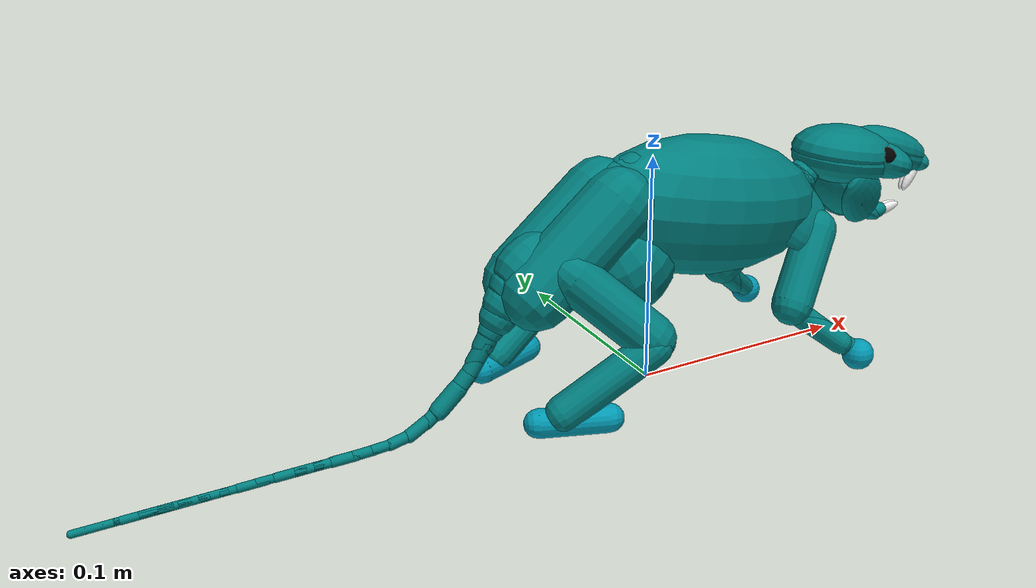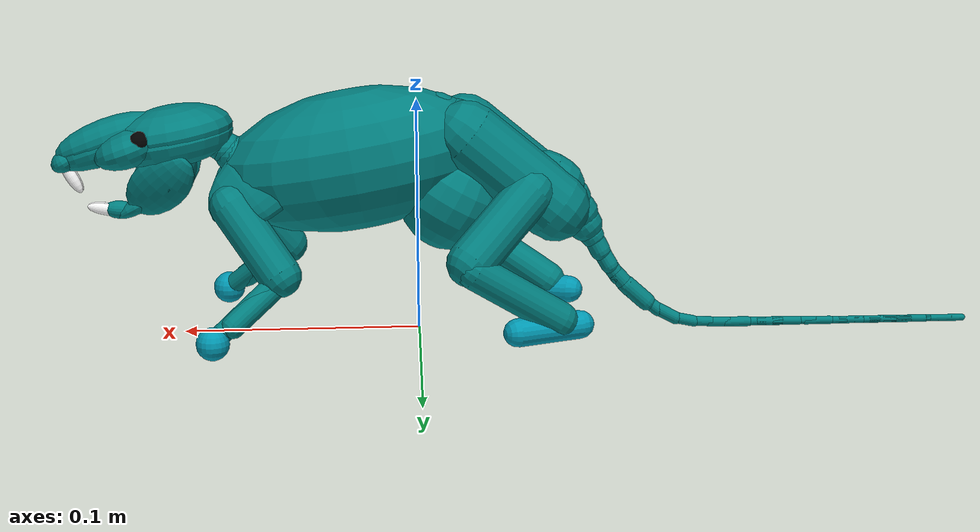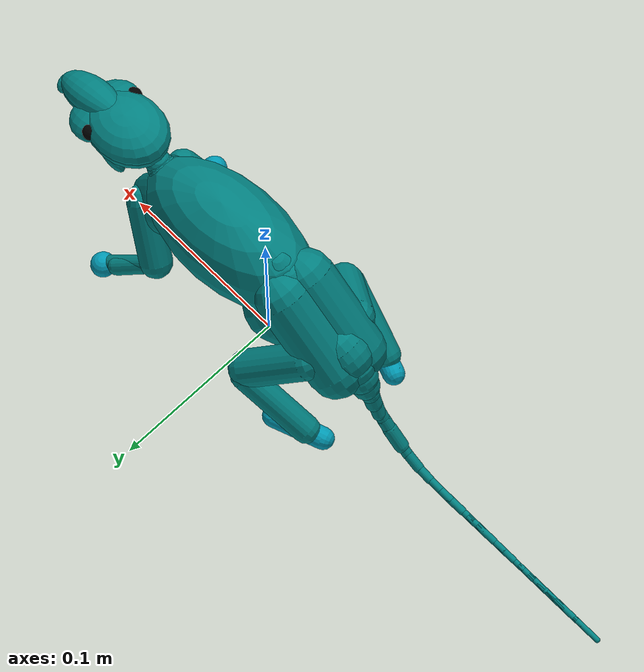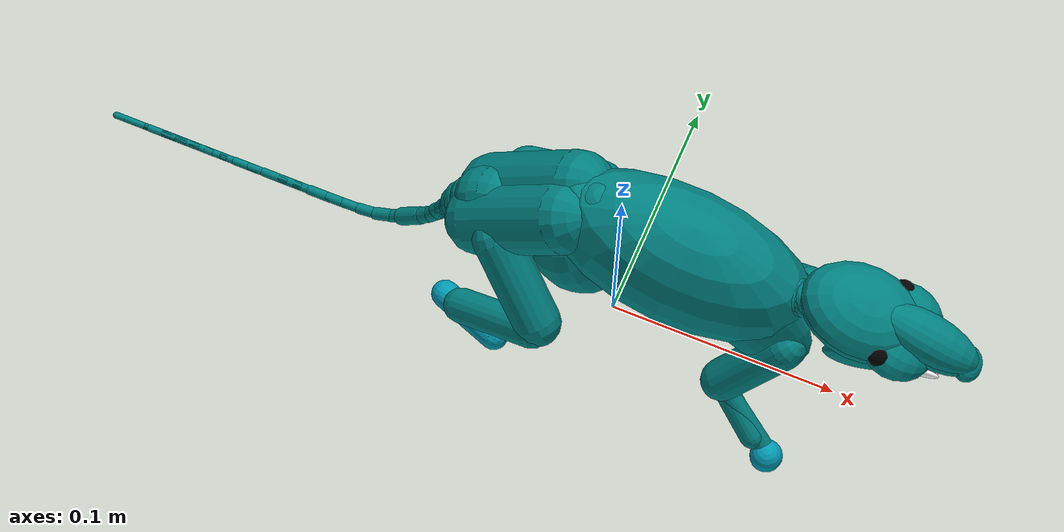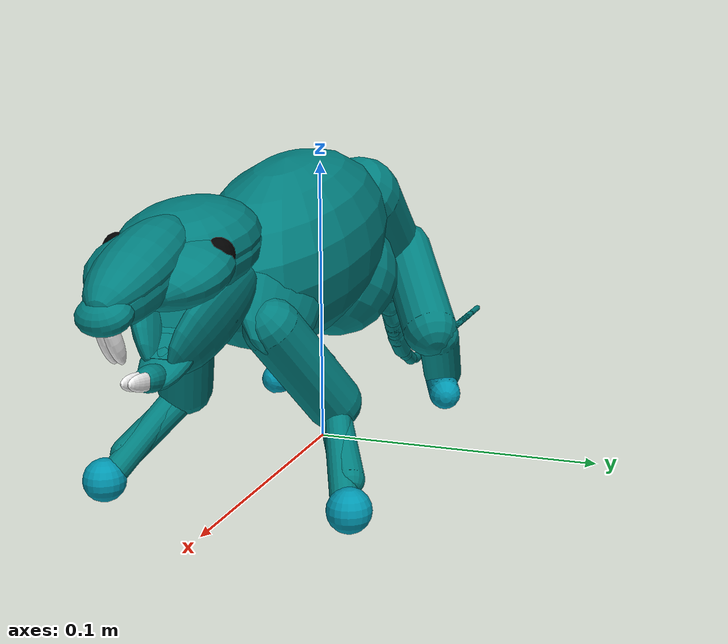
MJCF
<?xml version='1.0' encoding='utf-8'?>
<mujoco model="rat">
  <compiler angle="radian" />

  <size njmax="8000" nconmax="4000" />

  <visual>
    <quality shadowsize="2048" />
    <global offheight="2200" offwidth="3208" />
  </visual>

  <default>
    <joint limited="true" solreflimit="0.01 1" solimplimit="0.99 0.9999 0" armature="6e-07" damping="0.00115" />
    <geom friction="0.7 0.005 0.0001" solref="0.005 1" />
    <site group="3" rgba="0 0 1 1" />
    <tendon limited="false" />
    <general ctrllimited="true" forcelimited="false" dyntype="filter" biastype="affine" dynprm="0.06" />
    <default class="bone">
      <geom contype="0" conaffinity="0" group="0" rgba="0.5 0.5 0.5 1" density="1100.0" />
    </default>
    <default class="collision">
      <geom contype="1" conaffinity="1" condim="1" group="2" />
      <default class="collision_primitive">
        <geom type="capsule" group="2" rgba="0 0.5 0.5 1" density="500.0" />
        <default class="collision_primitive_paw">
          <geom condim="3" priority="1" rgba="0 0.6 0.7 1" friction="1.5 0.005 0.0001" />
        </default>
        <default class="nonself_collision_primitive">
          <geom conaffinity="0" />
        </default>
      </default>
    </default>
    <default class="lumbar">
      <joint group="3" pos="0.003 0 -0.003" armature="1e-05" damping="0.034499999999999996" />
      <general forcerange="-23.0 23.0" gainprm="23.0" biasprm="0.0 -23.0" />
      <default class="lumbar_extend">
        <joint stiffness="0.02" range="-0.5236 0.7854" />
        <tendon range="-1 1" />
        <general ctrlrange="-0.5236 0.7854" />
      </default>
      <default class="lumbar_bend">
        <joint stiffness="0.03" range="-0.5236 0.5236" />
        <tendon range="-1 1" />
        <general ctrlrange="-0.5236 0.5236" />
      </default>
      <default class="lumbar_twist">
        <joint stiffness="0.03" range="-0.5236 0.5236" />
        <tendon range="-1 1" />
        <general ctrlrange="-0.5236 0.5236" />
      </default>
    </default>
    <default class="cervical">
      <joint group="3" pos="-0.02 0 -0.05" stiffness="1" armature="0.001" damping="1.15" />
      <general forcerange="-23.0 23.0" gainprm="23.0" biasprm="0.0 -23.0" />
      <default class="cervical_extend">
        <joint range="-0.40724 0.61087" />
        <tendon range="-1 1" />
        <general ctrlrange="-0.40724 0.61087" />
      </default>
      <default class="cervical_bend">
        <joint range="-0.61087 0.61087" />
        <tendon range="-1 1" />
        <general ctrlrange="-0.61087 0.61087" />
      </default>
      <default class="cervical_twist">
        <joint range="-0.61087 0.61087" />
        <tendon range="-1 1" />
        <general ctrlrange="-0.61087 0.61087" />
      </default>
    </default>
    <default class="atlas">
      <joint axis="0 -1 0" stiffness="0.002" range="-0.087266 0.7854" damping="0.0023" />
      <general ctrlrange="-0.087266 0.7854" forcerange="-0.028749999999999998 0.028749999999999998" gainprm="0.057499999999999996" biasprm="0.0 -0.057499999999999996" />
    </default>
    <default class="mandible">
      <joint stiffness="0.002" range="-0.29671 0.2618" springref="-0.31416" damping="0.0023" />
      <general ctrlrange="-0.29671 0.2618" forcerange="-0.028749999999999998 0.028749999999999998" gainprm="0.057499999999999996" biasprm="0.0 -0.057499999999999996" />
    </default>
    <default class="caudal">
      <joint group="3" stiffness="1e-05" damping="0.0023" />
      <general forcerange="-0.11499999999999999 0.11499999999999999" gainprm="0.11499999999999999" biasprm="0.0 -0.11499999999999999" />
      <default class="caudal_extend">
        <joint range="-0.087266 0.087266" />
        <tendon range="-0.05 0.05" />
        <general ctrlrange="-0.2618 0.2618" />
      </default>
      <default class="caudal_bend">
        <joint range="-0.087266 0.087266" />
        <tendon range="-0.2 0.2" />
        <general ctrlrange="-0.2618 0.2618" />
      </default>
    </default>
    <default class="hip">
      <joint armature="1e-05" damping="0.023" />
      <general gainprm="0.22999999999999998" />
      <default class="hip_supinate">
        <joint range="-0.69813 0.5236" />
        <general ctrlrange="-0.69813 0.5236" forcerange="-0.22999999999999998 0.22999999999999998" gainprm="0.45999999999999996" biasprm="0.0 -0.45999999999999996" />
      </default>
      <default class="hip_abduct">
        <joint range="-0.5236 1.0472" />
        <general ctrlrange="-0.5236 1.0472" forcerange="-0.22999999999999998 0.22999999999999998" gainprm="0.45999999999999996" biasprm="0.0 -0.45999999999999996" />
      </default>
      <default class="hip_extend">
        <joint range="-1.5708 1.0472" />
        <general ctrlrange="-1.5708 1.0472" forcerange="-0.345 0.345" gainprm="0.69" biasprm="0.0 -0.69" />
      </default>
    </default>
    <default class="knee">
      <joint range="-1.2217 1.5359" damping="0.00575" />
      <general ctrlrange="-1.2217 1.5359" forcerange="-0.22999999999999998 0.22999999999999998" gainprm="0.45999999999999996" biasprm="0.0 -0.45999999999999996" />
    </default>
    <default class="ankle">
      <joint range="-0.13963 1.3963" damping="0.00345" />
      <general ctrlrange="-0.13963 1.3963" forcerange="-0.22999999999999998 0.22999999999999998" gainprm="0.45999999999999996" biasprm="0.0 -0.45999999999999996" />
    </default>
    <default class="toe">
      <joint range="-0.7854 1.5708" damping="0.00115" />
      <general ctrlrange="-0.7854 1.5708" forcerange="-0.028749999999999998 0.028749999999999998" gainprm="0.057499999999999996" biasprm="0.0 -0.057499999999999996" />
    </default>
    <default class="scapula">
      <joint damping="0.00575" />
      <general forcerange="-0.2875 0.2875" gainprm="0.575" biasprm="0.0 -0.575" />
      <default class="scapula_supinate">
        <joint pos="0 0.005 0" range="-0.017453 0.17453" />
        <general ctrlrange="-0.017453 0.17453" />
      </default>
      <default class="scapula_abduct">
        <joint pos="0 0.005 -0.01" range="-0.2618 0.2618" />
        <general ctrlrange="-0.2618 0.2618" />
      </default>
      <default class="scapula_extend">
        <joint pos="0 0 0" range="-0.034907 0.034907" />
        <general ctrlrange="-0.034907 0.034907" />
      </default>
    </default>
    <default class="shoulder">
      <joint range="-1.309 0.87266" damping="0.00575" />
      <general ctrlrange="-1.309 0.87266" forcerange="-0.1725 0.1725" gainprm="0.345" biasprm="0.0 -0.345" />
    </default>
    <default class="shoulder_sup">
      <joint range="-0.05236 1.1345" damping="0.00575" />
      <general ctrlrange="-0.05236 1.1345" forcerange="-0.1725 0.1725" gainprm="0.345" biasprm="0.0 -0.345" />
    </default>
    <default class="elbow">
      <joint range="-1.309 0.69813" damping="0.00345" />
      <general ctrlrange="-1.309 0.69813" forcerange="-0.1725 0.1725" gainprm="0.345" biasprm="0.0 -0.345" />
    </default>
    <default class="wrist">
      <joint range="-0.34907 2.0944" damping="0.0023" />
      <general ctrlrange="-0.34907 2.0944" forcerange="-0.057499999999999996 0.057499999999999996" gainprm="0.11499999999999999" biasprm="0.0 -0.11499999999999999" />
    </default>
    <default class="finger">
      <joint range="0 1.5708" damping="0.0023" />
      <general ctrlrange="0 1.5708" forcerange="-0.028749999999999998 0.028749999999999998" gainprm="0.057499999999999996" biasprm="0.0 -0.057499999999999996" />
    </default>
    <default class="sensor">
      <site group="4" />
    </default>
  </default>

  <statistic meansize="0.003" />

  <worldbody>

    <camera name="Cam13" mode="fixed" focalpixel="2477.229548414393 2477.229548414393" resolution="3208 2200" sensorsize="0.014436 0.0099" pos="-0.7601674022374256 -1.437212204600267 0.8074461972683981" xyaxes="0.84311395 -0.53753789 0.01455625 0.20435236 0.34532512 0.91596434" />

    <camera name="Cam14" mode="fixed" pos="0 -2 0.412" xyaxes="1 0 0.000 0 0.256 1" />

    <body name="torso" pos="0.03564425 2.367275e-07 0.07485349999999999">
      <site name="neck_3_kpsite" type="sphere" size="0.00575 0.00575 0.00575" rgba=".9 .6 .7 1" pos="0.028749999999999998 0.0 0.023" />

      <light name="tracking_light" mode="trackcom" pos="0 0 3" />
      <camera name="back" mode="trackcom" pos="-1 0 0.5" xyaxes="0 -1 0 1 0 2" />
      <camera name="right" mode="trackcom" pos="0 -1 0.5" xyaxes="1 0 0 0 1 2" />
      <camera name="left" mode="trackcom" pos="0.307 0.971 0.279" xyaxes="-0.941 0.338 -0.000 -0.070 -0.196 0.978"/>

      <camera name="side_alt" mode="trackcom" pos="0.5 -0.561 0.199" xyaxes="0.766 0.643 0 -0.162 0.192 0.968" />
      <camera name="side_alt2" mode="trackcom" pos="-0.386 -2.103 1.099" xyaxes="0.986 -0.164 -0.000 0.072 0.435 0.898" />

       <camera name="faroff" mode="trackcom" pos="-0.129 -4.905 1.394" xyaxes="1.000 -0.019 0.000 0.005 0.264 0.965" />
       <camera />

      <geom name="collision_torso" class="nonself_collision_primitive" type="ellipsoid" size="0.057499999999999996 0.0276 0.029899999999999996" density="468.25" pos="-0.009430000000000001 0.0 0.0" euler="0 0.17453 0" />
      <body name="vertebra_1" pos="-0.022055850000000002 -2.162345e-07 0.0193729">
        <geom name="vertebra_1_collision" class="nonself_collision_primitive" type="sphere" size="0.0115" pos="0.0 0.0 -0.0018859999999999999" />
        <body name="vertebra_2" pos="-0.006474154999999999 2.98402e-06 0.0006119035">
          <geom name="vertebra_2_collision" class="nonself_collision_primitive" type="sphere" size="0.0115" pos="0.0 0.0 -0.0018859999999999999" />
          <body name="vertebra_3" pos="-0.0074947799999999995 -1.197265e-05 -0.0001088728">
            <geom name="vertebra_3_collision" class="nonself_collision_primitive" type="sphere" size="0.0115" pos="0.0 0.0 -0.0018859999999999999" />
            <body name="vertebra_4" pos="-0.007794354999999999 1.0058015e-05 -0.0014941949999999998">
              <geom name="vertebra_4_collision" class="nonself_collision_primitive" type="sphere" size="0.0115" pos="0.0 0.0 -0.0018859999999999999" />
              <body name="vertebra_5" pos="-0.007923614999999998 -7.134945e-06 -0.002872815">

                <site name="spineL_4_kpsite" type="sphere" size="0.00575 0.00575 0.00575" rgba=".9 .6 .7 1" pos="0.0 0.0 0.00805" />

                <geom name="vertebra_5_collision" class="nonself_collision_primitive" type="sphere" size="0.0115" pos="0.0 0.0 -0.0018859999999999999" />
                <body name="vertebra_6" pos="-0.007113095 6.042559999999999e-06 -0.004187265">
                  <geom name="vertebra_6_collision" class="nonself_collision_primitive" type="sphere" size="0.0115" pos="0.0 0.0 -0.0018859999999999999" />
                  <joint name="vertebra_6_twist" class="lumbar_twist" axis="1 0 0" />
                  <body name="pelvis" pos="-0.015031649999999999 4.04018e-06 -0.00933915">

                    <geom name="collision_pelvis_L" class="nonself_collision_primitive" size="0.014949999999999998 0.02415 0.0" density="1548.6" pos="-0.0009429999999999999 0.0075439999999999995 -0.006601" euler="0 0.87266 0" />
                    <geom name="collision_pelvis_R" class="nonself_collision_primitive" size="0.014949999999999998 0.02415 0.0" density="1548.6" pos="-0.0009429999999999999 -0.0075439999999999995 -0.006601" euler="0 0.87266 0" />
                    <geom name="collision_pelvis_gut" class="nonself_collision_primitive" type="ellipsoid" size="0.023 0.023 0.023" density="1548.6" pos="0.023575 0.0 -0.018860000000000002" euler="0 -0.5236 0"  />

                    <site name="hip_L" size="0.00253" pos="-0.005531845 0.013214649999999998 -0.01137097" />
                    <site name="hip_R" size="0.00253" pos="-0.005531845 -0.013214649999999998 -0.01137097" />

                    <body name="upper_leg_L" pos="-0.005531845 0.013214649999999998 -0.01137097">
                      <joint name="hip_L_supinate" class="hip_supinate" axis="0 0 1" />
                      <joint name="hip_L_abduct" class="hip_abduct" axis="1 0 0" />
                      <joint name="hip_L_extend" class="hip_extend" axis="0 1 0" />
                      <site name="knee_L" type="cylinder" size="0.0006899999999999999 0.0046" pos="0.017736449999999997 0.02010085 -0.0295596" zaxis="0 1 0" />
                      <geom name="upper_leg_L0_collision" class="collision_primitive" size="0.01005376 0.02010775" density="1561.8" pos="0.009892875 0.012365949999999999 -0.0148396" euler="0.61087 -0.69813 0" />

                    <body name="lower_leg_L" pos="0.0177360421477489 0.02010084776744874 -0.029560070246248158">

                        <site name="knee_L_14_kpsite" type="sphere" size="0.0115 0.0115 0.0115" rgba=".9 .6 .7 1" pos="0.0 0.0 0.0" />

                        <joint name="knee_L" class="knee" axis="0.5 -1 0" />
                        <site name="ankle_L" type="cylinder" size="0.00069 0.0029899999999999996" pos="-0.03714677138850917 -0.005436112886123292 -0.025368526801908698" zaxis="0 1 0" />
                        <body name="foot_L" pos="-0.03714677138850917 -0.005436112886123292 -0.025368526801908698">

                          <site name="ankle_L_15_kpsite" type="sphere" size="0.0092 0.0092 0.0092" rgba=".9 .6 .7 1" pos="0.0 0.0 0.0" />

                          <joint name="ankle_L" class="ankle" axis="-0.3 1 0" />
                          <geom name="foot_L_collision" class="collision_primitive_paw" size="0.005992319039009063 0.014241802007606384" density="2041.15978228" pos="0.009515633637674785 0.00259517281027494 -0.00259517281027494" euler="1.570796326794897 -1.221730476396031 0" />
                          <site name="sole_L" class="sensor" group="2" type="box" size="0.0099 0.0056 0.0023" pos="0.009430000000000001 0.002829 -0.0018859999999999999" euler="0 0 0.3490658503988659" rgba=".9 .6 .7 0"/>

                          <site name="toe_L" type="cylinder" size="0.00069 0.005750000000000001" pos="0.024264934580723523 0.00875647639217414 -0.003164991467050894" zaxis="0 1 0" />
                          <body name="toe_L" pos="0.024264934580723523 0.00875647639217414 -0.003164991467050894">

                            <site name="foot_L_16_kpsite" type="sphere" size="0.00575 0.00575 0.00575" rgba=".9 .6 .7 1" pos="0.0 0.0 0.0" />

                          </body>
                        </body>
                        <geom name="lower_leg_L_collision" class="collision_primitive" size="0.007540322589424221 0.022118279595644382" density="1302.86687267" pos="-0.014102899039688456 0.00014085112901550363 -0.01232585370099532" quat="0.5843939876140521 0.278581552273902 0.3900453953818352 0.6547828460754284"  />
                      </body>
                    </body>

                    <body name="upper_leg_R" pos="-0.005531845 -0.013214649999999998 -0.01137097">
                      <joint name="hip_R_supinate" class="hip_supinate" axis="0 0 -1" />
                      <joint name="hip_R_abduct" class="hip_abduct" axis="-1 0 0" />
                      <joint name="hip_R_extend" class="hip_extend" axis="0 1 0" />
                      <site name="knee_R" type="cylinder" size="0.0006899999999999999 0.0046" pos="0.017736449999999997 -0.02010085 -0.0295596" zaxis="0 1 0" />
                      <geom name="upper_leg_R0_collision" class="collision_primitive" size="0.01005376 0.02010775" density="1561.8" pos="0.009892875 -0.012365949999999999 -0.0148396" euler="-0.61087 -0.69813 0" />

                      <body name="lower_leg_R" pos="0.0177360421477489 -0.02010084776744874 -0.029560070246248158">

                        <site name="knee_R_17_kpsite" type="sphere" size="0.0115 0.0115 0.0115" rgba=".9 .6 .7 1" pos="0.0 0.0 0.0" />

                        <joint name="knee_R" class="knee" axis="-0.5 -1 0" />
                        <site name="ankle_R" type="cylinder" size="0.00069 0.0029899999999999996" pos="-0.03714677138850917 0.005436112886123292 -0.025368526801908698" zaxis="0 1 0" />
                        <body name="foot_R" pos="-0.03714677138850917 0.005436112886123292 -0.025368526801908698">

                          <site name="ankle_R_18_kpsite" type="sphere" size="0.0092 0.0092 0.0092" rgba=".9 .6 .7 1" pos="0.0 0.0 0.0" />

                          <joint name="ankle_R" class="ankle" axis="0.3 1 0" />
                          <geom name="foot_R_collision" class="collision_primitive_paw" size="0.005992319039009063 0.014241802007606384" density="2041.15978228" pos="0.009515633637674785 -0.00259517281027494 -0.00259517281027494" euler="1.570796326794897 1.221730476396031 0" />
                          <site name="toe_R" type="cylinder" size="0.00069 0.005750000000000001" pos="0.024264934580723523 -0.00875647639217414 -0.003164991467050894" zaxis="0 1 0" />
                          <site name="sole_R" class="sensor" group="2" type="box" size="0.0099 0.0056 0.0023" pos="0.009430000000000001 -0.002829 -0.0018859999999999999" euler="0 0 -0.3490658503988659" rgba=".9 .6 .7 0"/>

                          <body name="toe_R" pos="0.024264934580723523 -0.00875647639217414 -0.003164991467050894">

                            <site name="foot_R_19_kpsite" type="sphere" size="0.00575 0.00575 0.00575" rgba=".9 .6 .7 1" pos="0.0 0.0 0.0" />

                          </body>
                        </body>
                        <geom name="lower_leg_R_collision" class="collision_primitive" size="0.007540322589424221 0.022118279595644382" density="1302.86687267" pos="-0.013833311053318368 -0.00018581549971447497 -0.01216025744371309" quat="0.6564315036111004 0.3901417719765998 0.2779576926818845 0.5827749135856758" />
                      </body>
                    </body>

                    <body name="vertebra_C1" pos="-0.018158499999999998 0.0 -0.013664299999999999">
                      <body name="vertebra_C2" pos="-0.004458665 0.0 -0.004860359999999999">
                        <body name="vertebra_C3" pos="-0.0039375999999999994 0.0 -0.004902564999999999">
                          <body name="vertebra_C4" pos="-0.0037626849999999996 0.0 -0.00507932">

                          <site name="tailbase_5_kpsite" type="sphere" size="0.00575 0.00575 0.00575" rgba=".9 .6 .7 1" pos="0.0 0.0 0.012649999999999998" />

                            <body name="vertebra_C5" pos="-0.0036523999999999997 0.0 -0.005254694999999999">
                              <body name="vertebra_C6" pos="-0.0035870799999999994 0.0 -0.005636609999999999">
                                <body name="vertebra_C7" pos="-0.0036981699999999998 0.0 -0.006491059999999999">
                                  <body name="vertebra_C8" pos="-0.003962785 0.0 -0.00634593">
                                    <body name="vertebra_C9" pos="-0.00492798 0.0 -0.0058822499999999995">
                                      <body name="vertebra_C10" pos="-0.005590725 0.0 -0.005246529999999999">
                                        <body name="vertebra_C11" pos="-0.00618102 0.0 -0.00501883">

                                         <site name="tail1Q_22_kpsite" type="sphere" size="0.006 0.006 0.006" rgba="1 1 0 1" pos="0.0 0.0 0" />

                                          <body name="vertebra_C12" pos="-0.007054675 0.0 -0.004417724999999999">
                                            <body name="vertebra_C13" pos="-0.00793201 0.0 -0.0029812599999999995">
                                              <body name="vertebra_C14" pos="-0.00784875 0.0 -0.001045235">
                                                <body name="vertebra_C15" pos="-0.00750513 0.0 -0.00036262949999999995">
                                                  <body name="vertebra_C16" pos="-0.007697984999999999 0.0 -0.0001592635">
                                                    <body name="vertebra_C17" pos="-0.007458209999999999 0.0 -1.921075e-05">

                                                    <site name="tailmid_21_kpsite" type="sphere" size="0.006 0.006 0.006" rgba="1 1 0 1" pos="0.0 0.0 0" />

                                                      <body name="vertebra_C18" pos="-0.00713851 0.0 0.0">
                                                        <body name="vertebra_C19" pos="-0.007134945 0.0 0.0">
                                                          <body name="vertebra_C20" pos="-0.0071626599999999995 0.0 2.8939749999999997e-06">
                                                            <body name="vertebra_C21" pos="-0.007035355 0.0 -0.00012610899999999998">
                                                            <body name="vertebra_C22" pos="-0.007484314999999999 0.0 -1.5087999999999999e-05">
                                                            <body name="vertebra_C23" pos="-0.00734942 0.0 0.0">

                                                            <site name="tail3Q_23_kpsite" type="sphere" size="0.006 0.006 0.006" rgba="1 1 0 1" pos="0.0 0.0 0" />

                                                            <body name="vertebra_C24" pos="-0.007107804999999999 0.0 0.0">
                                                            <body name="vertebra_C25" pos="-0.006863429999999999 0.0 0.0">
                                                            <body name="vertebra_C26" pos="-0.0064730049999999996 0.0 0.0">
                                                            <body name="vertebra_C27" pos="-0.0059720649999999995 0.0 0.0">
                                                            <body name="vertebra_C28" pos="-0.00579163 0.0 5.8351e-07">
                                                            <body name="vertebra_C29" pos="-0.005489985 0.0 0.0">
                                                            <body name="vertebra_C30" pos="-0.0046062099999999995 0.0 -4.82678e-07">

                                                            <site name="tailtip_20_kpsite" type="sphere" size="0.006 0.006 0.006" rgba="1 1 0 1" pos="0.0 0.0 0" />

                                                            <geom name="vertebra_C30_collision" class="collision_primitive" size="0.001492585 0.0070868749999999986 0.0039749749999999995" density="507.16" pos="0.0 0.0 0.0" quat="0 0.70711 0 0.70711" />
                                                            </body>
                                                            <joint name="vertebra_C29_bend" class="caudal_bend" pos="0.0037408 0 0" axis="0 0 -1" range="-0.2618 0.2618" />
                                                            <geom name="vertebra_C29_collision" class="collision_primitive" size="0.00149132 0.006858369999999999 0.00301162" density="507.16" pos="0.0 0.0 0.0" quat="0 0.70711 0 0.70711" />
                                                            </body>
                                                            <geom name="vertebra_C28_collision" class="collision_primitive" size="0.00149132 0.006629634999999999 0.0033094699999999997" density="507.16" pos="0.0 0.0 0.0" quat="0 0.70711 0 0.70711" />
                                                            </body>
                                                            <joint name="vertebra_C27_extend" class="caudal_extend" pos="0.0038538 0 0" axis="0 1 0" range="-0.2618 0.2618" />
                                                            <geom name="vertebra_C27_collision" class="collision_primitive" size="0.0015865399999999998 0.00640113 0.00352061" density="507.16" pos="0.0 0.0 0.0" quat="0 0.70711 0 0.70711" />
                                                            </body>
                                                            <geom name="vertebra_C26_collision" class="collision_primitive" size="0.0015865399999999998 0.006172395 0.00352061" density="507.16" pos="0.0 0.0 0.0" quat="0 0.70711 0 0.70711" />
                                                            </body>
                                                            <joint name="vertebra_C25_bend" class="caudal_bend" pos="0.0035962 0 0" axis="0 0 -1" range="-0.2618 0.2618" />
                                                            <geom name="vertebra_C25_collision" class="collision_primitive" size="0.0015865399999999998 0.005943889999999999 0.004000735" density="507.16" pos="0.0 0.0 0.0" quat="0 0.70711 0 0.70711" />
                                                            </body>
                                                            <geom name="vertebra_C24_collision" class="collision_primitive" size="0.0015865399999999998 0.00571527 0.004000735" density="507.16" pos="0.0 0.0 0.0" quat="0 0.70711 0 0.70711" />
                                                            </body>
                                                            <joint name="vertebra_C23_extend" class="caudal_extend" pos="0.0035962 0 0" axis="0 1 0" range="-0.2618 0.2618" />
                                                            <geom name="vertebra_C23_collision" class="collision_primitive" size="0.0015865399999999998 0.00548665 0.00430192" density="507.16" pos="0.0 0.0 0.0" quat="0 0.70711 0 0.70711" />
                                                            </body>
                                                            <geom name="vertebra_C22_collision" class="collision_primitive" size="0.0015865399999999998 0.0052580299999999995 0.00430192" density="507.16" pos="0.0 0.0 0.0" quat="0 0.70711 0 0.70711" />
                                                            </body>
                                                            <joint name="vertebra_C21_bend" class="caudal_bend" pos="0.0038632 0 6.925e-05" axis="0.017923 0 -0.99984" range="-0.2618 0.2618" />
                                                            <geom name="vertebra_C21_collision" class="collision_primitive" size="0.0017600749999999998 0.005717915 0.00443187" density="507.16" pos="0.0 0.0 0.0" quat="0 0.70711 0 0.70711" />
                                                            </body>
                                                            <geom name="vertebra_C20_collision" class="collision_primitive" size="0.0017230449999999999 0.005952974999999999 0.0041356299999999995" density="507.16" pos="0.0 0.0 0.0" quat="0 0.70711 0 0.70711" />
                                                          </body>
                                                          <joint name="vertebra_C19_extend" class="caudal_extend" pos="0.0042786 0 0" axis="0 1 0" range="-0.2618 0.2618" />
                                                          <geom name="vertebra_C19_collision" class="collision_primitive" size="0.0018790999999999999 0.005947109999999999 0.0041356299999999995" density="507.16" pos="0.0 0.0 0.0" quat="0 0.70711 0 0.70711" />
                                                        </body>
                                                        <geom name="vertebra_C18_collision" class="collision_primitive" size="0.0018790999999999999 0.00564972 0.0041356299999999995" density="507.16" pos="0.0 0.0 0.0" quat="0 0.70711 0 0.70711" />
                                                      </body>
                                                      <joint name="vertebra_C17_bend" class="caudal_bend" pos="0.0042794 0 1.1023e-05" axis="0.0025757 0 -1" range="-0.2618 0.2618" />
                                                      <geom name="vertebra_C17_collision" class="collision_primitive" size="0.0018790999999999999 0.00535233 0.0041356299999999995" density="507.16" pos="0.0 0.0 0.0" quat="0 0.70711 0 0.70711" />
                                                    </body>
                                                    <geom name="vertebra_C16_collision" class="collision_primitive" size="0.002159815 0.00505494 0.004446935" density="507.16" pos="0.0 0.0 0.0" quat="0 0.70711 0 0.70711" />
                                                  </body>
                                                  <joint name="vertebra_C15_extend" class="caudal_extend" pos="0.0039328 0 0.00019003" axis="0 1 0" range="-0.2618 0.2618" />
                                                  <geom name="vertebra_C15_collision" class="collision_primitive" size="0.002122095 0.004757665 0.0044433699999999994" density="507.16" pos="0.0 0.0 0.0" quat="0 0.69918 0 0.71494" />
                                                </body>
                                                <geom name="vertebra_C14_collision" class="collision_primitive" size="0.0021218649999999997 0.004460275 0.004443254999999999" density="507.16" pos="0.0 0.0 0.0" quat="0 0.68661 0 0.72702" />
                                              </body>
                                              <joint name="vertebra_C13_bend" class="caudal_bend" pos="0.0035122 0 0.0013201" axis="0.35182 0 -0.93607" range="-0.2618 0.2618" />
                                              <geom name="vertebra_C13_collision" class="collision_primitive" size="0.002404305 0.004554 0.004920389999999999" density="507.16" pos="0.0 0.0 0.0" quat="0 0.62939 0 0.77709" />
                                            </body>
                                            <geom name="vertebra_C12_collision" class="collision_primitive" size="0.0027985249999999996 0.00476813 0.004920964999999999" density="507.16" pos="0.0 0.0 0.0" quat="0 0.50808 0 0.86131" />
                                          </body>
                                          <joint name="vertebra_C11_extend" class="caudal_extend" pos="0.002737 0 0.0022224" axis="0 1 0" range="-0.2618 0.2618" />
                                          <geom name="vertebra_C11_collision" class="collision_primitive" size="0.002874655 0.004481435 0.00492131" density="507.16" pos="0.0 0.0 0.0" quat="0 0.43494 0 0.90046" />
                                        </body>
                                        <geom name="vertebra_C10_collision" class="collision_primitive" size="0.0039343799999999995 0.005976319999999999 0.004528585" density="507.16" pos="0.0 0.0 0.0" quat="0 0.40482 0 0.9144" />
                                      </body>
                                      <joint name="vertebra_C9_bend" class="caudal_bend" pos="0.0028865 0 0.0034454" axis="0.76655 0 -0.64219" range="-0.2618 0.2618" />
                                      <geom name="vertebra_C9_collision" class="collision_primitive" size="0.0036001899999999996 0.005169134999999999 0.004528009999999999" density="507.16" pos="0.0 0.0 0.0" quat="0.93394 0 0.35744 0" />
                                    </body>
                                    <geom name="vertebra_C8_collision" class="collision_primitive" size="0.0034681699999999996 0.0045505499999999996 0.004527435" density="507.16" pos="0.0 0.0 0.0" quat="0.95576 0 0.29416 0" />
                                  </body>
                                  <joint name="vertebra_C7_extend" class="caudal_extend" pos="0.0026902 0 0.0047218" axis="0 1 0" range="-0.2618 0.2618" />
                                  <geom name="vertebra_C7_collision" class="collision_primitive" size="0.0037454349999999996 0.005334734999999999 0.004314915" density="507.16" pos="0.0 0.0 0.0" quat="-0.95872 -0.028644 -0.26293 0.10445" />
                                </body>
                                <joint name="vertebra_C6_extend" class="caudal_extend" pos="0.0021034 0 0.0033051" axis="0 1 0" range="-0.2618 0.2618" />
                                <joint name="vertebra_C6_bend" class="caudal_bend" pos="0.0021034 0 0.0033051" axis="0.84365 0 -0.53689" range="-0.2618 0.2618" />
                                <geom name="vertebra_C6_collision" class="collision_primitive" size="0.004426464999999999 0.005108069999999999 0.00450524" density="507.16" pos="0.0 0.0 0.0" quat="-0.96847 -0.020165 -0.23384 0.083519" />
                              </body>
                              <joint name="vertebra_C5_extend" class="caudal_extend" pos="0.0020122 0 0.0028951" axis="0 1 0" range="-0.2618 0.2618" />
                              <joint name="vertebra_C5_bend" class="caudal_bend" pos="0.0020122 0 0.0028951" axis="0.82113 0 -0.57074" range="-0.2618 0.2618" />
                              <geom name="vertebra_C5_collision" class="collision_primitive" size="0.005227095 0.00434309 0.004054555" density="507.16" pos="0.0 0.0 0.0" quat="0.95956 0 0.28152 0" />
                            </body>
                            <joint name="vertebra_C4_extend" class="caudal_extend" pos="0.0025361 0 0.0034235" axis="0 1 0" range="-0.2618 0.2618" />
                            <joint name="vertebra_C4_bend" class="caudal_bend" pos="0.0025361 0 0.0034235" axis="0.80354 0 -0.59524" range="-0.2618 0.2618" />
                            <geom name="vertebra_C4_collision" class="collision_primitive" size="0.00765072 0.004429455 0.004899575" density="507.16" pos="0.0 0.0 0.0" quat="0.6699 0.22636 0.22636 0.6699" />
                          </body>
                          <joint name="vertebra_C3_extend" class="caudal_extend" pos="0.0028146 0 0.0035044" axis="0 1 0" range="-0.2618 0.2618" />
                          <joint name="vertebra_C3_bend" class="caudal_bend" pos="0.0028146 0 0.0035044" axis="0.77966 0 -0.62621" range="-0.2618 0.2618" />
                          <geom name="vertebra_C3_collision" class="collision_primitive" size="0.009080399999999999 0.00471201 0.005168905" density="507.16" pos="0.0 0.0 0.0" quat="0.65841 0.25786 0.25786 0.65841" />
                        </body>
                        <joint name="vertebra_C2_extend" class="caudal_extend" pos="0.0035585 0 0.0038792" axis="0 1 0" range="-0.2618 0.2618" />
                        <joint name="vertebra_C2_bend" class="caudal_bend" pos="0.0035585 0 0.0038792" axis="0.73691 0 -0.67599" range="-0.2618 0.2618" />
                        <geom name="vertebra_C2_collision" class="collision_primitive" size="0.00961446 0.00403213 0.00605383" density="507.16" pos="0.0 0.0 0.0" quat="0.61659 0.34614 0.34614 0.61659" />
                      </body>
                      <joint name="vertebra_C1_extend" class="caudal_extend" pos="0.0043423 0 0.0032675" axis="0 1 0" range="-0.2618 0.2618" />
                      <joint name="vertebra_C1_bend" class="caudal_bend" pos="0.0043423 0 0.0032675" axis="0.60127 0 -0.79905" range="-0.2618 0.2618" />
                      <geom name="vertebra_C1_collision" class="collision_primitive" size="0.01260975 0.00272596 0.0062495599999999995" density="507.16" pos="0.0 0.0 0.0" quat="0.57724 0.35066 0.32403 0.66245" />
                    </body>
                  </body>
                </body>
                <joint name="vertebra_5_bend" class="lumbar_bend" axis="0 0 1" />
              </body>
              <joint name="vertebra_4_extend" class="lumbar_extend" axis="0 1 0" />
            </body>
            <joint name="vertebra_3_twist" class="lumbar_twist" axis="1 0 0" />
          </body>
          <joint name="vertebra_2_bend" class="lumbar_bend" axis="0 0 1" />
        </body>
        <joint name="vertebra_1_extend" class="lumbar_extend" axis="0 1 0" />
      </body>
      <body name="vertebra_cervical_5" pos="0.03186535 1.3599899999999998e-05 -0.0011503449999999999">
        <geom name="vertebra_cervical_5_collision" class="nonself_collision_primitive" type="sphere" size="0.010349999999999998" density="300.0" />
        <body name="vertebra_cervical_4" pos="0.00277035 -1.3817249999999999e-05 0.0009310169999999999">
          <geom name="vertebra_cervical_4_collision" class="nonself_collision_primitive" type="sphere" size="0.009659999999999998" density="300.0" />
          <body name="vertebra_cervical_3" pos="0.0024728449999999996 0.0 0.0010827595">
            <geom name="vertebra_cervical_3_collision" class="nonself_collision_primitive" type="sphere" size="0.008969999999999999" density="300.0" />
            <body name="vertebra_cervical_2" pos="0.002185 0.0 0.001005974">
              <geom name="vertebra_cervical_2_collision" class="nonself_collision_primitive" type="sphere" size="0.00828" density="300.0" />
              <body name="vertebra_cervical_1" pos="0.002044125 0.0 0.0010753305">
                <geom name="vertebra_cervical_1_collision" class="nonself_collision_primitive" type="sphere" size="0.0075899999999999995" density="300.0" />
                <body name="vertebra_axis" pos="0.0021646449999999998 -2.020205e-06 0.0019617849999999997">
                  <geom name="vertebra_axis_collision" class="nonself_collision_primitive" type="sphere" size="0.0069" density="300.0" />
                  <body name="vertebra_atlant" pos="0.0028200299999999994 2.02055e-06 0.0015750399999999998">
                    <geom name="vertebra_atlant_collision" class="nonself_collision_primitive" type="sphere" size="0.00621" density="300.0" />
                    <joint name="vertebra_atlant_extend" class="cervical_extend" pos="2.7406e-05 0 -0.00021153" axis="0 1 0" />
                    <body name="skull" pos="0.029848249999999996 0.0 0.0020360749999999996">
                      <geom name="skull_0_collision" class="collision_primitive" type="ellipsoid" size="0.025409249999999998 0.019200399999999996 0.0115" density="703.11" pos="-0.010417849999999998 0.0 0.0009429999999999999" euler="0 0.17453 0" />
                      <geom name="skull_0b_collision" class="collision_primitive" type="ellipsoid" size="0.025409249999999998 0.019200399999999996 0.0115" density="1.4062" pos="-0.010417849999999998 0.0 0.0037719999999999997" euler="0 0.17453 0" />
                      <geom name="skull_F_collision" class="collision_primitive" type="ellipsoid" size="0.008258034999999999 0.010239945 0.023" density="703.11" pos="0.016668099999999998 0.0 -0.0009429999999999999" euler="0 1.9199 0" />
                      <geom name="skull_Fb_collision" class="collision_primitive" type="ellipsoid" size="0.008258034999999999 0.010239945 0.023" density="1.4062" pos="0.016668099999999998 0.0 0.0018859999999999999" euler="0 1.9199 0" />
                      <geom name="skull_L_collision" class="collision_primitive" type="ellipsoid" size="0.008258034999999999 0.01536055 0.0161" density="703.11" pos="0.00625071 0.005248024999999999 -0.0009429999999999999" euler="0 1.9199 0" />
                      <geom name="eye_L_collision" class="collision_primitive" type="sphere" group="1" size="0.0046 0.0046 0.0046" rgba="0 0 0 1" pos="0.0012705199999999998 0.014719999999999999 0.002875" />

                      <site name="nose_0_kpsite" type="sphere" size="0.00575 0.00575 0.00575" rgba="1 0 0 1" pos="0.043699999999999996 0.0 -0.0046" />
                      <site name="ear_L_1_kpsite" type="sphere" size="0.00575 0.00575 0.00575" rgba=".9 .6 .7 1" pos="-0.012649999999999998 0.014719999999999999 0.014949999999999998" />
                      <site name="ear_R_2_kpsite" type="sphere" size="0.00575 0.00575 0.00575" rgba=".9 .6 .7 1" pos="-0.012649999999999998 -0.014719999999999999 0.014949999999999998" />

                      <geom name="skull_R_collision" class="collision_primitive" type="ellipsoid" size="0.008258034999999999 0.01536055 0.0161" density="703.11" pos="0.00625071 -0.005248024999999999 -0.0009429999999999999" euler="0 1.9199 0" />
                      <geom name="eye_R_collision" class="collision_primitive" type="sphere" group="1" size="0.0046 0.0046 0.0046" rgba="0 0 0 1" pos="0.0012705199999999998 -0.014719999999999999 0.002875" />
                      <geom name="skull_P0_collision" class="collision_primitive" type="box" size="0.007622889999999999 0.007167949999999999 0.0018399999999999998" density="703.11" pos="0.00208357 0.0 -0.006601" />
                      <geom name="skull_P1_collision" class="collision_primitive" type="box" size="0.00508185 0.00460805 0.0013799999999999997" density="703.11" pos="0.0072924949999999995 0.0 -0.006601" />
                      <geom name="skull_P2_collision" class="collision_primitive" type="box" size="0.0012705199999999998 0.0038399649999999994 0.0009199999999999999" density="703.11" pos="0.009897015 0.0 -0.006601" />
                      <geom name="skull_T0_collision" class="collision_primitive" type="ellipsoid" size="0.0063523699999999995 0.007680044999999999 0.0046" density="703.11" pos="0.03437925 0.0 -0.0075439999999999995" euler="0 0.5236 0" />
                      <geom name="skull_T1_collision" class="collision_primitive" type="ellipsoid" group="1" size="0.002540925 0.0019200399999999998 0.00805" rgba="1 1 1 1" density="703.11" pos="0.032295449999999996 0.001049605 -0.014145" euler="0 0.5236 0" />
                      <geom name="skull_T2_collision" class="collision_primitive" type="ellipsoid" group="1" size="0.002540925 0.0019200399999999998 0.00805" rgba="1 1 1 1" density="703.11" pos="0.032295449999999996 -0.001049605 -0.014145" euler="0 0.5236 0" />
                      <joint name="atlas" class="atlas" pos="-0.028436 0 0" />
                      <site name="head" class="sensor" type="box" size="0.0023 0.0023 0.0023" />
                      <camera name="egocentric" fovy="80" pos="0.01 0 0.005" euler="0 -1.5708 -1.5708" />
                      <body name="jaw" pos="0.0005208925 0.0 -0.018860000000000002" euler="0 0.2618 0">
                        <geom name="jaw_back_collision" class="collision_primitive" type="ellipsoid" size="0.013974799999999999 0.01536055 0.00805" density="314.06" pos="-0.01250165 0.0 0.0023575000000000002" euler="0 0.95993 0" />
                        <geom name="jaw_F_collision" class="collision_primitive" type="ellipsoid" size="0.0038114449999999997 0.007680044999999999 0.0138" density="314.06" pos="0.003125355 0.0 -0.005658" euler="0 1.8326 0" />
                        <geom name="jaw_L_collision" class="collision_primitive" type="ellipsoid" size="0.011434334999999999 0.004480055 0.0184" density="314.06" pos="-0.00625071 0.009446445 0.0009429999999999999" euler="-0.69813 2.1817 0.5236" />
                        <geom name="jaw_R_collision" class="collision_primitive" type="ellipsoid" size="0.011434334999999999 0.004480055 0.0184" density="314.06" pos="-0.00625071 -0.009446445 0.0009429999999999999" euler="0.69813 2.1817 -0.5236" />
                        <geom name="jaw_T0_collision" class="collision_primitive" type="ellipsoid" size="0.0038114449999999997 0.0038399649999999994 0.0069" density="314.06" pos="0.014585449999999998 0.0 -0.006601" euler="0 1.2217 0" />
                        <geom name="jaw_T1_collision" class="collision_primitive" type="ellipsoid" group="1" size="0.002540925 0.001536055 0.00805" rgba="1 1 1 1" density="314.06" pos="0.0197938 0.001049605 -0.0047150000000000004" euler="0 1.1345 0" />
                        <geom name="jaw_T2_collision" class="collision_primitive" type="ellipsoid" group="1" size="0.002540925 0.001536055 0.00805" rgba="1 1 1 1" density="314.06" pos="0.0197938 -0.001049605 -0.0047150000000000004" euler="0 1.1345 0" />
                        <geom name="jaw_P0_collision" class="collision_primitive" type="box" size="0.007622889999999999 0.007167949999999999 0.0018399999999999998" density="314.06" pos="-0.003125355 0.0 0.0009429999999999999" euler="0 0.95993 0" />
                        <geom name="jaw_P1_collision" class="collision_primitive" type="box" size="0.00508185 0.005632009999999999 0.00115" density="314.06" pos="0.0 0.0 -0.0011316" euler="0 0.5236 0" />
                        <geom name="jaw_P2_collision" class="collision_primitive" type="box" size="0.00508185 0.00460805 0.00115" density="314.06" pos="0.003125355 0.0 -0.0026403999999999998" euler="0 0.43633 0" />
                        <geom name="jaw_P3_collision" class="collision_primitive" type="box" size="0.0038114449999999997 0.003327985 0.0006899999999999999" density="314.06" pos="0.005417305 0.0 -0.0033005" euler="0 0.2618 0" />
                        <joint name="mandible" class="mandible" pos="-0.0185 0 0.004" axis="0 1 0" />
                      </body>
                    </body>
                  </body>
                  <joint name="vertebra_axis_twist" class="cervical_twist" pos="9.9439e-05 0 -0.00026762" axis="0.74098 -0.00069152 0.67152" />
                </body>
                <joint name="vertebra_cervical_1_bend" class="cervical_bend" pos="2.747e-05 0 -0.00026377" axis="-0.46557 0 0.88501" />
              </body>
              <joint name="vertebra_cervical_2_extend" class="cervical_extend" pos="1.2952e-05 0 -0.00025387" axis="0 1 0" />
            </body>
            <joint name="vertebra_cervical_3_twist" class="cervical_twist" pos="8.1976e-06 0 -0.00025443" axis="0.91604 0 0.4011" />
          </body>
          <joint name="vertebra_cervical_4_bend" class="cervical_bend" pos="-1.5376e-05 4.7973e-07 -0.00027279" axis="-0.31855 0 0.9479" />
        </body>
        <joint name="vertebra_cervical_5_extend" class="cervical_extend" pos="-0.00019346 -3.9986e-07 -0.00022969" axis="0 1 0" />
      </body>

      <body name="scapula_L" pos="0.0075439999999999995 0.0018859999999999999 0.013202">

        <site name="shoulder_L_6_kpsite" type="sphere" size="0.00575 0.00575 0.00575" rgba=".9 .6 .7 1" pos="0.029899999999999996 0.023 -0.0046" />

        <joint name="scapula_L_supinate" class="scapula_supinate" pos="0 -0.005000000000000001 0" axis="-0 -0 1" />
        <joint name="scapula_L_abduct" class="scapula_abduct" pos="0 -0.005000000000000001 -0.01" axis="1 -0 -0" />
        <joint name="scapula_L_extend" class="scapula_extend" pos="0 0 0" axis="0.3 1 0" />
        <site name="shoulder_L" size="0.0023" pos="0.033005 0.011316 -0.029233" />
        <body name="upper_arm_L" pos="0.033005 0.011316 -0.029233">
          <joint name="shoulder_L" class="shoulder" axis="0 1 0" />
          <joint name="shoulder_sup_L" class="shoulder_sup" axis="0 0 -1" />
          <site name="elbow_L" type="cylinder" size="0.00069 0.0046" pos="-0.018320889615532007 0.011908578250095806 -0.025649245461744807" zaxis="0 1 0.2" />
          <body name="lower_arm_L" pos="-0.018320889615532007 0.011908578250095806 -0.025649245461744807">

            <site name="elbow_L_7_kpsite" type="sphere" size="0.0092 0.0092 0.0092" rgba="1 1 0 1" pos="-0.01 0.00 -0.01" />

            <joint name="elbow_L" class="elbow" axis="0 1 0.2" />
            <site name="wrist_L" type="cylinder" size="0.0009199999999999999 0.003909999999999999" pos="0.02484305182951204 0.014491780233882024 -0.022772797510386036" zaxis="0 1 0" />
            <body name="hand_L" pos="0.02484305182951204 0.014491780233882024 -0.022772797510386036">
              <site name="wrist_L_8_kpsite" type="sphere" size="0.00575 0.00575 0.00575" rgba=".9 .6 .7 1" pos="0.0 0.0 0.0" />

              <geom name="hand_L_collision" class="collision_primitive_paw" type="ellipsoid" size="0.0069 0.0069 0.0069" density="2531.78122831" pos="0.0017432544766076941 0.0008716272383038469 -0.002929763429823081" euler="0 0 0" />
              <site name="palm_L" class="sensor" group="2" type="box" size="0.0046 0.0046 0.0023" pos="0.0 0.0 -0.01" euler="0 0 0.4886921905584123" rgba=".9 .6 .7 0" />

              <body name="finger_L" pos="0.0034865089532153883 0.0017432544766076941 -0.009587899621342317">
                <site name="hand_L_9_kpsite" type="sphere" size="0.00575 0.00575 0.00575" rgba=".9 .6 .7 1" pos="0.0 0.0 0.0" />
              </body>
            </body>
            <geom name="radius_L_collision" class="collision_primitive" size="0.004291990661602689 0.01830407782154088" pos="0.013231272876557383 0.007878342567199227 -0.014060273650535188" quat="0.02376493230846292 0.7917721441518218 0.4232293467931716 0.4397829234413568" />
            <geom name="ulna_L_collision" class="collision_primitive" size="0.005049400778356104 0.01514820233506831" pos="0.007762229018079921 0.005741281450528253 -0.010913325720158585" quat="0.01282244452041863 0.7446249872782607 0.4776065607195328 0.4661128472752391" />
          </body>
          <geom name="humerus_L_collision" class="collision_primitive" size="0.00893701932464976 0.017874038649299515" pos="-0.008904846117573929 0.006656175723583564 -0.013780855647805323" quat="0.472560999180163 0.3450082805420177 0.0007016050154913519 0.8109592444517103" />
        </body>
        <geom name="scapula_L_collision" class="nonself_collision_primitive" type="ellipsoid" size="0.005756176449358464 0.01682660210877657 0.02795770067721605" density="513.564612303" pos="0.020206215887229845 0.009932454182129475 -0.017513950866578445" quat="0.1844194062696375 0.7692222855376651 0.4740322845517004 0.3867556738123709" />
      </body>

      <body name="scapula_R" pos="0.0075439999999999995 -0.0018859999999999999 0.013202">

        <site name="shoulder_R_10_kpsite" type="sphere" size="0.00575 0.00575 0.00575" rgba=".9 .6 .7 1" pos="0.029899999999999996 -0.023 -0.0046" />

        <joint name="scapula_R_supinate" class="scapula_supinate" pos="0 0.005000000000000001 0" axis="0 0 -1" />
        <joint name="scapula_R_abduct" class="scapula_abduct" pos="0 0.005000000000000001 -0.01" axis="-1 0 0" />
        <joint name="scapula_R_extend" class="scapula_extend" pos="0 0 0" axis="-0.3 1 0" />
        <site name="shoulder_R" size="0.0023" pos="0.033005 -0.011316 -0.029233" />
        <body name="upper_arm_R" pos="0.033005 -0.011316 -0.029233">
          <joint name="shoulder_R" class="shoulder" axis="0 1 0" />
          <joint name="shoulder_sup_R" class="shoulder_sup" axis="-0 -0 1" />
          <site name="elbow_R" type="cylinder" size="0.00069 0.0046" pos="-0.018320889615532007 -0.011908578250095806 -0.025649245461744807" zaxis="0 1 -0.2" />
          <body name="lower_arm_R" pos="-0.018320889615532007 -0.011908578250095806 -0.025649245461744807">
            <site name="elbow_R_11_kpsite" type="sphere" size="0.0092 0.0092 0.0092" rgba=".9 .6 .7 1" pos="-0.01 0.0 -0.01" />
            <joint name="elbow_R" class="elbow" axis="0 1 -0.2" />
            <site name="wrist_R" type="cylinder" size="0.0009199999999999999 0.003909999999999999" pos="0.02484305182951204 -0.014491780233882024 -0.022772797510386036" zaxis="0 1 0" />
            <body name="hand_R" pos="0.02484305182951204 -0.014491780233882024 -0.022772797510386036">

              <site name="wrist_R_12_kpsite" type="sphere" size="0.00575 0.00575 0.00575" rgba=".9 .6 .7 1" pos="0.0 0.0 0.0" />

              <geom name="hand_R_collision" class="collision_primitive_paw" type="ellipsoid" size="0.0069 0.0069 0.0069" density="2531.78122831" pos="0.0017432544766076941 -0.0008716272383038469 -0.002929763429823081" euler="0 0 0" />
              <site name="palm_R" class="sensor" group="2" type="box" size="0.0046 0.0046 0.0023" pos="0.0 -0.0 -0.01" euler="0 0 -0.0" rgba=".9 .6 .7 0"/>

              <body name="finger_R" pos="0.0034865089532153883 -0.0017432544766076941 -0.009587899621342317">
                <site name="hand_R_13_kpsite" type="sphere" size="0.00575 0.00575 0.00575" rgba=".9 .6 .7 1" pos="0.0 0.0 0.0" />

              </body>
            </body>
            <geom name="radius_R_collision" class="collision_primitive" size="0.004291990661602689 0.01830407782154088" pos="0.013231280605148827 -0.007878850875168538 -0.01406027944664462" quat="0.4397828585901176 0.423230473256099 0.7917715587074765 0.02376557635859348" />
            <geom name="ulna_R_collision" class="collision_primitive" size="0.005049400778356104 0.01514820233506831" pos="0.00776223197036674 -0.005741787546400236 -0.01091332578322891" quat="0.4661127828257156 0.4776067795325061 0.7446248854693838 0.01282254930824632" />
          </body>
          <geom name="humerus_R_collision" class="collision_primitive" size="0.00893701932464976 0.017874038649299515" pos="-0.008904843172941613 -0.006656599694632699 -0.013780853271926135" quat="0.8109593935310486 0.0007013948082913995 0.3450082795040448 0.4725607444157158" />
        </body>
        <geom name="scapula_R_collision" class="nonself_collision_primitive" type="ellipsoid" size="0.005756175806745886 0.016826605964452034 0.027957695536315445" density="513.564646393" pos="0.02020621321678021 -0.0099328895574723 -0.01751394872232643" quat="0.3867556972129688 0.4740321312040688 0.7692223496423682 0.1844194839763772" />
      </body>
    </body>

  </worldbody>

  <contact>
    <exclude name="pelvis:vertebra_C2" body1="pelvis" body2="vertebra_C2" />
    <exclude name="pelvis:vertebra_C3" body1="pelvis" body2="vertebra_C3" />
    <exclude name="pelvis:vertebra_C4" body1="pelvis" body2="vertebra_C4" />
    <exclude name="vertebra_C1:vertebra_C3" body1="vertebra_C1" body2="vertebra_C3" />
    <exclude name="vertebra_C1:vertebra_C4" body1="vertebra_C1" body2="vertebra_C4" />
    <exclude name="vertebra_C2:vertebra_C4" body1="vertebra_C2" body2="vertebra_C4" />
    <exclude name="vertebra_C3:vertebra_C5" body1="vertebra_C3" body2="vertebra_C5" />
    <exclude name="vertebra_C4:vertebra_C6" body1="vertebra_C4" body2="vertebra_C6" />
    <exclude name="vertebra_C5:vertebra_C7" body1="vertebra_C5" body2="vertebra_C7" />
    <exclude name="vertebra_axis:skull" body1="vertebra_axis" body2="skull" />
    <exclude name="pelvis:vertebra_C5" body1="pelvis" body2="vertebra_C5" />
    <exclude name="pelvis:vertebra_C6" body1="pelvis" body2="vertebra_C6" />
    <exclude name="vertebra_C2:vertebra_C5" body1="vertebra_C2" body2="vertebra_C5" />
    <exclude name="vertebra_C3:vertebra_C6" body1="vertebra_C3" body2="vertebra_C6" />
    <exclude name="vertebra_C4:vertebra_C7" body1="vertebra_C4" body2="vertebra_C7" />
    <exclude name="upper_arm_L:upper_arm_R" body1="upper_arm_L" body2="upper_arm_R" />
    <exclude name="upper_leg_L:vertebra_C1" body1="upper_leg_L" body2="vertebra_C1" />
    <exclude name="upper_leg_L:vertebra_C2" body1="upper_leg_L" body2="vertebra_C2" />
    <exclude name="upper_leg_R:vertebra_C1" body1="upper_leg_R" body2="vertebra_C1" />
    <exclude name="upper_leg_R:vertebra_C2" body1="upper_leg_R" body2="vertebra_C2" />
    <exclude name="vertebra_cervical_1:skull" body1="vertebra_cervical_1" body2="skull" />
    <exclude name="vertebra_cervical_2:skull" body1="vertebra_cervical_2" body2="skull" />
    <exclude name="upper_arm_L:torso" body1="upper_arm_L" body2="torso" />
    <exclude name="upper_arm_R:torso" body1="upper_arm_R" body2="torso" />
    <exclude name="lower_leg_L:pelvis" body1="lower_leg_L" body2="pelvis" />
    <exclude name="lower_leg_R:pelvis" body1="lower_leg_R" body2="pelvis" />
    <exclude name="torso:upper_leg_L"  body1="torso"  body2="upper_leg_L"/>
    <exclude name="torso:upper_leg_R"  body1="torso"  body2="upper_leg_R"/>
    <exclude name="torso:lower_leg_L"  body1="torso"  body2="lower_leg_L"/>
    <exclude name="torso:lower_leg_R"  body1="torso"  body2="lower_leg_R"/>

    <exclude name="pelvis:upper_leg_L" body1="pelvis" body2="upper_leg_L"/>
    <exclude name="pelvis:upper_leg_R" body1="pelvis" body2="upper_leg_R"/>

  </contact>

  <tendon>
    <fixed name="lumbar_extend" class="lumbar_extend">
      <joint joint="vertebra_1_extend" coef="0.60498" />
      <joint joint="vertebra_4_extend" coef="0.39502" />
    </fixed>
    <fixed name="lumbar_bend" class="lumbar_bend">
      <joint joint="vertebra_2_bend" coef="0.65821" />
      <joint joint="vertebra_5_bend" coef="0.34179" />
    </fixed>
    <fixed name="lumbar_twist" class="lumbar_twist">
      <joint joint="vertebra_3_twist" coef="0.57067" />
      <joint joint="vertebra_6_twist" coef="0.42933" />
    </fixed>
    <fixed name="cervical_extend" class="cervical_extend">
      <joint joint="vertebra_cervical_5_extend" coef="0.34171" />
      <joint joint="vertebra_cervical_2_extend" coef="0.33241" />
      <joint joint="vertebra_atlant_extend" coef="0.32588" />
    </fixed>
    <fixed name="cervical_bend" class="cervical_bend">
      <joint joint="vertebra_cervical_4_bend" coef="0.50744" />
      <joint joint="vertebra_cervical_1_bend" coef="0.49256" />
    </fixed>
    <fixed name="cervical_twist" class="cervical_twist">
      <joint joint="vertebra_cervical_3_twist" coef="0.49614" />
      <joint joint="vertebra_axis_twist" coef="0.50386" />
    </fixed>
    <fixed name="caudal_extend" class="caudal_extend">
      <joint joint="vertebra_C1_extend" coef="0.29007" />
      <joint joint="vertebra_C2_extend" coef="0.20767" />
      <joint joint="vertebra_C3_extend" coef="0.15164" />
      <joint joint="vertebra_C4_extend" coef="0.11543" />
      <joint joint="vertebra_C5_extend" coef="0.08755" />
      <joint joint="vertebra_C6_extend" coef="0.069256" />
      <joint joint="vertebra_C7_extend" coef="0.055869" />
      <joint joint="vertebra_C11_extend" coef="0.017531" />
      <joint joint="vertebra_C15_extend" coef="0.0041442" />
      <joint joint="vertebra_C19_extend" coef="0.00074642" />
      <joint joint="vertebra_C23_extend" coef="8.5913e-05" />
      <joint joint="vertebra_C27_extend" coef="1.4273e-05" />
    </fixed>
    <fixed name="caudal_bend" class="caudal_bend">
      <joint joint="vertebra_C1_bend" coef="0.37079" />
      <joint joint="vertebra_C2_bend" coef="0.23352" />
      <joint joint="vertebra_C3_bend" coef="0.15089" />
      <joint joint="vertebra_C4_bend" coef="0.10189" />
      <joint joint="vertebra_C5_bend" coef="0.067174" />
      <joint joint="vertebra_C6_bend" coef="0.043956" />
      <joint joint="vertebra_C9_bend" coef="0.01882" />
      <joint joint="vertebra_C13_bend" coef="0.0099989" />
      <joint joint="vertebra_C17_bend" coef="0.0025264" />
      <joint joint="vertebra_C21_bend" coef="0.00037878" />
      <joint joint="vertebra_C25_bend" coef="4.1066e-05" />
      <joint joint="vertebra_C29_bend" coef="1.4387e-05" />
    </fixed>
  </tendon>

  <actuator>
    <general name="lumbar_extend" class="lumbar_extend" tendon="lumbar_extend" />
    <general name="lumbar_bend" class="lumbar_bend" tendon="lumbar_bend" />
    <general name="lumbar_twist" class="lumbar_twist" tendon="lumbar_twist" />
    <general name="cervical_extend" class="cervical_extend" tendon="cervical_extend" />
    <general name="cervical_bend" class="cervical_bend" tendon="cervical_bend" />
    <general name="cervical_twist" class="cervical_twist" tendon="cervical_twist" />

    <general name="caudal_extend" class="caudal_extend" tendon="caudal_extend" />
    <general name="caudal_bend" class="caudal_bend" tendon="caudal_bend" />
    <general name="hip_L_supinate" class="hip_supinate" joint="hip_L_supinate" />
    <general name="hip_L_abduct" class="hip_abduct" joint="hip_L_abduct" />
    <general name="hip_L_extend" class="hip_extend" joint="hip_L_extend" />
    <general name="knee_L" class="knee" joint="knee_L" />
    <general name="ankle_L" class="ankle" joint="ankle_L" />
    <general name="hip_R_supinate" class="hip_supinate" joint="hip_R_supinate" />
    <general name="hip_R_abduct" class="hip_abduct" joint="hip_R_abduct" />
    <general name="hip_R_extend" class="hip_extend" joint="hip_R_extend" />
    <general name="knee_R" class="knee" joint="knee_R" />
    <general name="ankle_R" class="ankle" joint="ankle_R" />

    <general name="atlas" class="atlas" joint="atlas" />
    <general name="mandible" class="mandible" joint="mandible" />
    <general name="scapula_L_supinate" class="scapula_supinate" joint="scapula_L_supinate" />
    <general name="scapula_L_abduct" class="scapula_abduct" joint="scapula_L_abduct" />
    <general name="scapula_L_extend" class="scapula_extend" joint="scapula_L_extend" />
    <general name="shoulder_L" class="shoulder" joint="shoulder_L" />
    <general name="shoulder_sup_L" class="shoulder_sup" joint="shoulder_sup_L" />
    <general name="elbow_L" class="elbow" joint="elbow_L" />
    <general name="scapula_R_supinate" class="scapula_supinate" joint="scapula_R_supinate" />
    <general name="scapula_R_abduct" class="scapula_abduct" joint="scapula_R_abduct" />
    <general name="scapula_R_extend" class="scapula_extend" joint="scapula_R_extend" />
    <general name="shoulder_R" class="shoulder" joint="shoulder_R" />
    <general name="shoulder_sup_R" class="shoulder_sup" joint="shoulder_sup_R" />
    <general name="elbow_R" class="elbow" joint="elbow_R" />

  </actuator>

  <sensor>
    <accelerometer name="accelerometer" site="head" />
    <velocimeter name="velocimeter" site="head" />
    <gyro name="gyro" site="head" />
    <touch name="palm_L" site="palm_L" />
    <touch name="palm_R" site="palm_R" />
    <touch name="sole_L" site="sole_L" />
    <touch name="sole_R" site="sole_R" />

    <!-- NEW: 3-D force sensors at each paw site -->
    <force  name="force_palm_L"  site="palm_L"/>
    <force  name="force_palm_R"  site="palm_R"/>
    <force  name="force_sole_L"  site="sole_L"/>
    <force  name="force_sole_R"  site="sole_R"/>

    <torque name="torque_palm_L" site="palm_L"/>
    <torque name="torque_palm_R" site="palm_R"/>
    <torque name="torque_sole_L" site="sole_L"/>
    <torque name="torque_sole_R" site="sole_R"/>

    <subtreelinvel name="torso" body="torso" />
  </sensor>

</mujoco>
